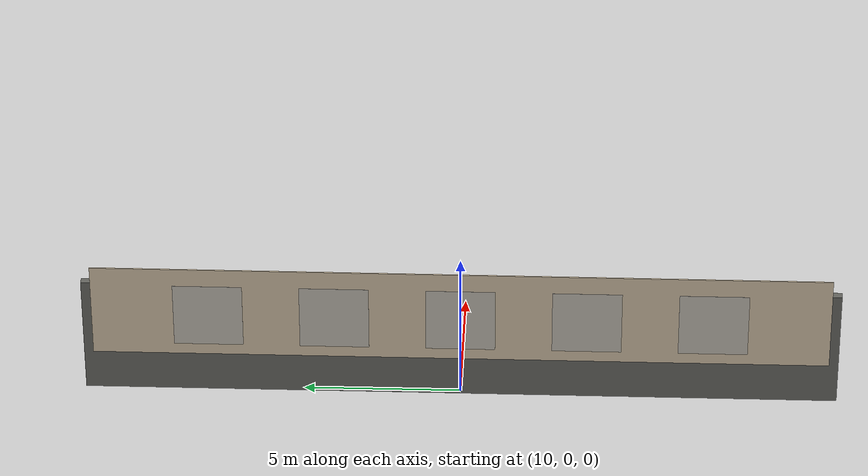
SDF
<?xml version="1.0"?>
<sdf version="1.9">
  <model name="inspection_wall">
    <static>true</static>
    <!-- Wall centre is 10 m ahead of the home position and 2 m above ground;
         ArduPilot SITL reports the 3 m inspection flight at Gazebo Z≈3 m. -->
    <pose>10 0 2 0 0 0</pose>
    <link name="wall_link">
      <collision name="wall_collision"><geometry><box><size>0.25 24 4</size></box></geometry></collision>
      <visual name="concrete_backing">
        <geometry><box><size>0.25 24 4</size></box></geometry>
        <material><diffuse>0.38 0.38 0.36 1</diffuse><specular>0.05 0.05 0.05 1</specular></material>
      </visual>
      <!-- Blank physical backing wall. The smaller front-mounted planes below
           are the only crack-photo materials visible to the camera. -->
      <visual name="inspection_facade">
        <pose>-0.16 0 1.0 0 0 0</pose>
        <geometry><box><size>0.04 23.4 3.2</size></box></geometry>
        <material><ambient>0.78 0.72 0.62 1</ambient><diffuse>0.78 0.72 0.62 1</diffuse><emissive>0.30 0.26 0.20 1</emissive><specular>0.02 0.02 0.02 1</specular></material>
      </visual>
      <visual name="panel_01"><pose>-0.215 -8 0.9 0 -1.5708 0</pose><geometry><plane><size>2.2 2.2</size></plane></geometry><cast_shadows>false</cast_shadows><material><ambient>0.72 0.70 0.66 1</ambient><diffuse>0.72 0.70 0.66 1</diffuse><pbr><metal><albedo_map>model://inspection_wall/materials/textures/panel_01.jpg</albedo_map><roughness>0.92</roughness><metalness>0.0</metalness></metal></pbr></material></visual>
      <visual name="panel_02"><pose>-0.215 -4 0.9 0 -1.5708 0</pose><geometry><plane><size>2.2 2.2</size></plane></geometry><cast_shadows>false</cast_shadows><material><ambient>0.72 0.70 0.66 1</ambient><diffuse>0.72 0.70 0.66 1</diffuse><pbr><metal><albedo_map>model://inspection_wall/materials/textures/panel_02.jpg</albedo_map><roughness>0.92</roughness><metalness>0.0</metalness></metal></pbr></material></visual>
      <visual name="panel_03"><pose>-0.215 0 0.9 0 -1.5708 0</pose><geometry><plane><size>2.2 2.2</size></plane></geometry><cast_shadows>false</cast_shadows><material><ambient>0.72 0.70 0.66 1</ambient><diffuse>0.72 0.70 0.66 1</diffuse><pbr><metal><albedo_map>model://inspection_wall/materials/textures/panel_03.jpg</albedo_map><roughness>0.92</roughness><metalness>0.0</metalness></metal></pbr></material></visual>
      <visual name="panel_04"><pose>-0.215 4 0.9 0 -1.5708 0</pose><geometry><plane><size>2.2 2.2</size></plane></geometry><cast_shadows>false</cast_shadows><material><ambient>0.72 0.70 0.66 1</ambient><diffuse>0.72 0.70 0.66 1</diffuse><pbr><metal><albedo_map>model://inspection_wall/materials/textures/panel_04.jpg</albedo_map><roughness>0.92</roughness><metalness>0.0</metalness></metal></pbr></material></visual>
      <visual name="panel_05"><pose>-0.215 8 0.9 0 -1.5708 0</pose><geometry><plane><size>2.2 2.2</size></plane></geometry><cast_shadows>false</cast_shadows><material><ambient>0.72 0.70 0.66 1</ambient><diffuse>0.72 0.70 0.66 1</diffuse><pbr><metal><albedo_map>model://inspection_wall/materials/textures/panel_05.jpg</albedo_map><roughness>0.92</roughness><metalness>0.0</metalness></metal></pbr></material></visual>
    </link>
  </model>
</sdf>
